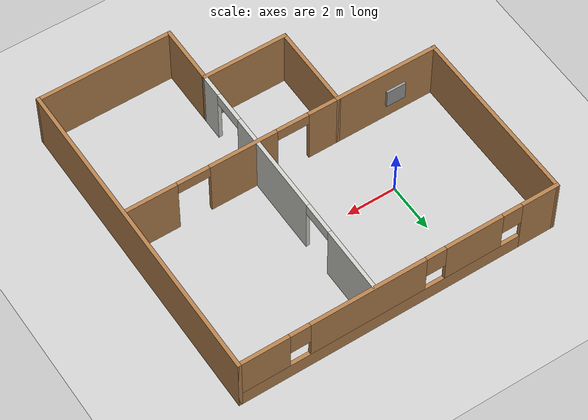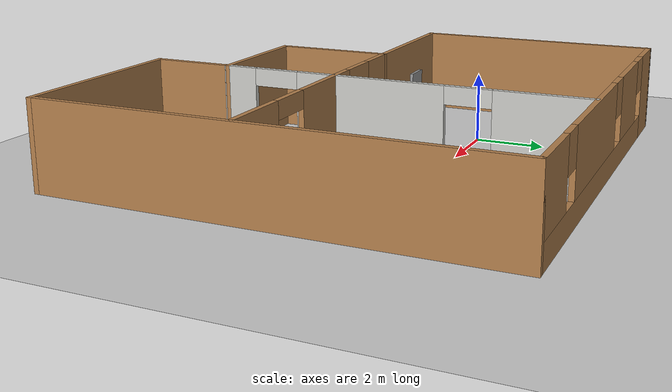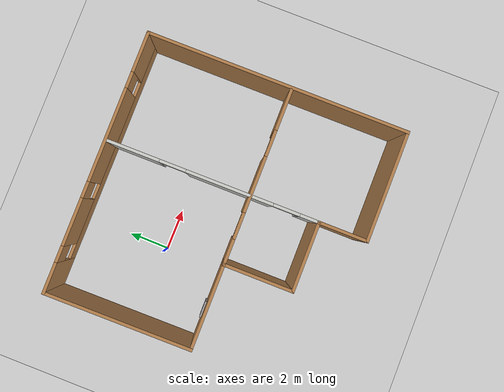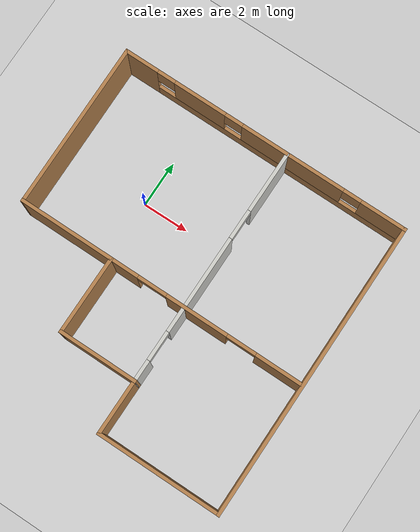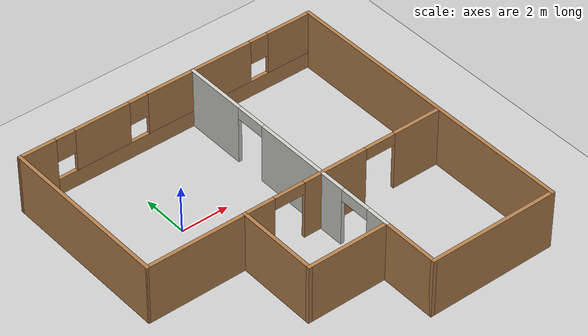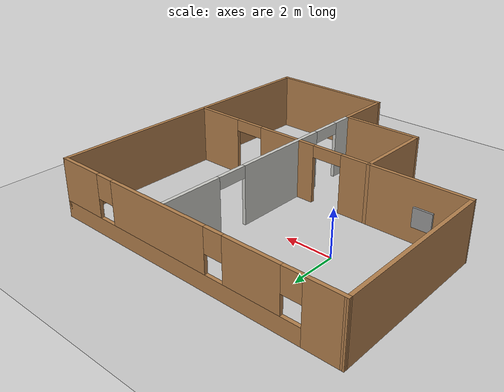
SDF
<sdf version="1.6">
 <world name="default">
  <light name="sun" type="directional">
   <pose>0 0 10 0 -0 0</pose>
   <diffuse>0.8 0.8 0.8 1</diffuse>
   <specular>0.2 0.2 0.2 1</specular>
   <attenuation>
    <range>1000</range>
    <constant>0.9</constant>
    <linear>0.01</linear>
    <quadratic>0.001</quadratic>
   </attenuation>
   <direction>-0.5 0.1 -0.9</direction>
  </light>
  <model name="ground_plane">
   <static>1</static>
   <link name="link">
    <collision name="collision">
     <geometry><plane><normal>0 0 1</normal><size>100 100</size></plane></geometry>
     <surface>
      <contact><collide_bitmask>65535</collide_bitmask></contact>
      <friction><ode><mu>100</mu><mu2>50</mu2></ode></friction>
     </surface>
    </collision>
    <visual name="visual">
     <cast_shadows>0</cast_shadows>
     <geometry><plane><normal>0 0 1</normal><size>100 100</size></plane></geometry>
     <material>
      <script><uri>file://media/materials/scripts/gazebo.material</uri><name>Gazebo/Grey</name></script>
     </material>
    </visual>
   </link>
  </model>
  <gravity>0 0 -9.8</gravity>
  <magnetic_field>6e-06 2.3e-05 -4.2e-05</magnetic_field>
  <atmosphere type="adiabatic"/>
  <physics name="default_physics" default="0" type="ode">
   <max_step_size>0.001</max_step_size>
   <real_time_factor>1</real_time_factor>
   <real_time_update_rate>1000</real_time_update_rate>
  </physics>
  <scene><ambient>0.4 0.4 0.4 1</ambient><background>0.7 0.7 0.7 1</background><shadows>1</shadows></scene>
  <audio><device>default</device></audio>
  <spherical_coordinates>
   <surface_model>EARTH_WGS84</surface_model>
   <latitude_deg>0</latitude_deg>
   <longitude_deg>0</longitude_deg>
   <elevation>0</elevation>
   <heading_deg>0</heading_deg>
  </spherical_coordinates>
  <model name="robot_house">
   <pose>2.79981 -2.1318 0 0 -0 0</pose>
   <link name="Wall_0">
    <pose>0.000261 6.42474 0 0 -0 0</pose>
    <visual name="Wall_0_Visual_0">
     <pose>-5.723 0 1.25 0 -0 0</pose>
     <geometry><box><size>1.55399 0.15 2.5</size></box></geometry>
     <material>
      <script><uri>file://media/materials/scripts/gazebo.material</uri><name>Gazebo/Wood</name></script>
      <ambient>1 1 1 1</ambient>
     </material>
     <meta><layer>0</layer></meta>
    </visual>
    <collision name="Wall_0_Collision_0">
     <geometry><box><size>1.55399 0.15 2.5</size></box></geometry>
     <pose>-5.723 0 1.25 0 -0 0</pose>
    </collision>
    <visual name="Wall_0_Visual_1">
     <pose>0.776997 0 0.35 0 -0 0</pose>
     <geometry><box><size>11.446 0.15 0.7</size></box></geometry>
     <material>
      <script><uri>file://media/materials/scripts/gazebo.material</uri><name>Gazebo/Wood</name></script>
      <ambient>1 1 1 1</ambient>
     </material>
     <meta><layer>0</layer></meta>
    </visual>
    <collision name="Wall_0_Collision_1">
     <geometry><box><size>11.446 0.15 0.7</size></box></geometry>
     <pose>0.776997 0 0.35 0 -0 0</pose>
    </collision>
    <visual name="Wall_0_Visual_2">
     <pose>-2.97061 0 1.6 0 -0 0</pose>
     <geometry><box><size>2.35079 0.15 1.8</size></box></geometry>
     <material>
      <script><uri>file://media/materials/scripts/gazebo.material</uri><name>Gazebo/Wood</name></script>
      <ambient>1 1 1 1</ambient>
     </material>
     <meta><layer>0</layer></meta>
    </visual>
    <collision name="Wall_0_Collision_2">
     <geometry><box><size>2.35079 0.15 1.8</size></box></geometry>
     <pose>-2.97061 0 1.6 0 -0 0</pose>
    </collision>
    <visual name="Wall_0_Visual_3">
     <pose>1.32732 0 1.6 0 -0 0</pose>
     <geometry><box><size>4.64506 0.15 1.8</size></box></geometry>
     <material>
      <script><uri>file://media/materials/scripts/gazebo.material</uri><name>Gazebo/Wood</name></script>
      <ambient>1 1 1 1</ambient>
     </material>
     <meta><layer>0</layer></meta>
    </visual>
    <collision name="Wall_0_Collision_3">
     <geometry><box><size>4.64506 0.15 1.8</size></box></geometry>
     <pose>1.32732 0 1.6 0 -0 0</pose>
    </collision>
    <visual name="Wall_0_Visual_4">
     <pose>5.47492 0 1.6 0 -0 0</pose>
     <geometry><box><size>2.05015 0.15 1.8</size></box></geometry>
     <material>
      <script><uri>file://media/materials/scripts/gazebo.material</uri><name>Gazebo/Wood</name></script>
      <ambient>1 1 1 1</ambient>
     </material>
     <meta><layer>0</layer></meta>
    </visual>
    <collision name="Wall_0_Collision_4">
     <geometry><box><size>2.05015 0.15 1.8</size></box></geometry>
     <pose>5.47492 0 1.6 0 -0 0</pose>
    </collision>
    <visual name="Wall_0_Visual_5">
     <pose>-4.54601 0 2 0 -0 0</pose>
     <geometry><box><size>0.8 0.15 1</size></box></geometry>
     <material>
      <script><uri>file://media/materials/scripts/gazebo.material</uri><name>Gazebo/Wood</name></script>
      <ambient>1 1 1 1</ambient>
     </material>
     <meta><layer>0</layer></meta>
    </visual>
    <collision name="Wall_0_Collision_5">
     <geometry><box><size>0.8 0.15 1</size></box></geometry>
     <pose>-4.54601 0 2 0 -0 0</pose>
    </collision>
    <visual name="Wall_0_Visual_6">
     <pose>-1.39521 0 2 0 -0 0</pose>
     <geometry><box><size>0.8 0.15 1</size></box></geometry>
     <material>
      <script><uri>file://media/materials/scripts/gazebo.material</uri><name>Gazebo/Wood</name></script>
      <ambient>1 1 1 1</ambient>
     </material>
     <meta><layer>0</layer></meta>
    </visual>
    <collision name="Wall_0_Collision_6">
     <geometry><box><size>0.8 0.15 1</size></box></geometry>
     <pose>-1.39521 0 2 0 -0 0</pose>
    </collision>
    <visual name="Wall_0_Visual_7">
     <pose>4.04985 0 2 0 -0 0</pose>
     <geometry><box><size>0.8 0.15 1</size></box></geometry>
     <material>
      <script><uri>file://media/materials/scripts/gazebo.material</uri><name>Gazebo/Wood</name></script>
      <ambient>1 1 1 1</ambient>
     </material>
     <meta><layer>0</layer></meta>
    </visual>
    <collision name="Wall_0_Collision_7">
     <geometry><box><size>0.8 0.15 1</size></box></geometry>
     <pose>4.04985 0 2 0 -0 0</pose>
    </collision>
   </link>
   <link name="Wall_1">
    <collision name="Wall_1_Collision">
     <geometry><box><size>13 0.15 2.5</size></box></geometry>
     <pose>0 0 1.25 0 -0 0</pose>
    </collision>
    <visual name="Wall_1_Visual">
     <pose>0 0 1.25 0 -0 0</pose>
     <geometry><box><size>13 0.15 2.5</size></box></geometry>
     <material>
      <script><uri>file://media/materials/scripts/gazebo.material</uri><name>Gazebo/Wood</name></script>
      <ambient>1 1 1 1</ambient>
     </material>
     <meta><layer>0</layer></meta>
    </visual>
    <pose>6.42526 -0.000261 0 0 -0 -1.5708</pose>
   </link>
   <link name="Wall_11">
    <pose>2.02526 -0.725261 0 0 -0 0</pose>
    <visual name="Wall_11_Visual_0">
     <pose>-3.71909 0 1.25 0 -0 0</pose>
     <geometry><box><size>1.31182 0.15 2.5</size></box></geometry>
     <material>
      <script><uri>file://media/materials/scripts/gazebo.material</uri><name>Gazebo/Wood</name></script>
      <ambient>1 1 1 1</ambient>
     </material>
     <meta><layer>0</layer></meta>
    </visual>
    <collision name="Wall_11_Collision_0">
     <geometry><box><size>1.31182 0.15 2.5</size></box></geometry>
     <pose>-3.71909 0 1.25 0 -0 0</pose>
    </collision>
    <visual name="Wall_11_Visual_1">
     <pose>-0.385539 0 1.25 0 -0 0</pose>
     <geometry><box><size>2.75528 0.15 2.5</size></box></geometry>
     <material>
      <script><uri>file://media/materials/scripts/gazebo.material</uri><name>Gazebo/Wood</name></script>
      <ambient>1 1 1 1</ambient>
     </material>
     <meta><layer>0</layer></meta>
    </visual>
    <collision name="Wall_11_Collision_1">
     <geometry><box><size>2.75528 0.15 2.5</size></box></geometry>
     <pose>-0.385539 0 1.25 0 -0 0</pose>
    </collision>
    <visual name="Wall_11_Visual_2">
     <pose>3.33355 0 1.25 0 -0 0</pose>
     <geometry><box><size>2.0829 0.15 2.5</size></box></geometry>
     <material>
      <script><uri>file://media/materials/scripts/gazebo.material</uri><name>Gazebo/Wood</name></script>
      <ambient>1 1 1 1</ambient>
     </material>
     <meta><layer>0</layer></meta>
    </visual>
    <collision name="Wall_11_Collision_2">
     <geometry><box><size>2.0829 0.15 2.5</size></box></geometry>
     <pose>3.33355 0 1.25 0 -0 0</pose>
    </collision>
    <visual name="Wall_11_Visual_3">
     <pose>-2.41318 0 2.25 0 -0 0</pose>
     <geometry><box><size>1.3 0.15 0.5</size></box></geometry>
     <material>
      <script><uri>file://media/materials/scripts/gazebo.material</uri><name>Gazebo/Wood</name></script>
      <ambient>1 1 1 1</ambient>
     </material>
     <meta><layer>0</layer></meta>
    </visual>
    <collision name="Wall_11_Collision_3">
     <geometry><box><size>1.3 0.15 0.5</size></box></geometry>
     <pose>-2.41318 0 2.25 0 -0 0</pose>
    </collision>
    <visual name="Wall_11_Visual_4">
     <pose>1.6421 0 2.25 0 -0 0</pose>
     <geometry><box><size>1.3 0.15 0.5</size></box></geometry>
     <material>
      <script><uri>file://media/materials/scripts/gazebo.material</uri><name>Gazebo/Wood</name></script>
      <ambient>1 1 1 1</ambient>
     </material>
     <meta><layer>0</layer></meta>
    </visual>
    <collision name="Wall_11_Collision_4">
     <geometry><box><size>1.3 0.15 0.5</size></box></geometry>
     <pose>1.6421 0 2.25 0 -0 0</pose>
    </collision>
   </link>
   <link name="Wall_2">
    <collision name="Wall_2_Collision">
     <geometry><box><size>5.5 0.15 2.5</size></box></geometry>
     <pose>0 0 1.25 0 -0 0</pose>
    </collision>
    <visual name="Wall_2_Visual">
     <pose>0 0 1.25 0 -0 0</pose>
     <geometry><box><size>5.5 0.15 2.5</size></box></geometry>
     <material>
      <script><uri>file://media/materials/scripts/gazebo.material</uri><name>Gazebo/Wood</name></script>
      <ambient>1 1 1 1</ambient>
     </material>
     <meta><layer>0</layer></meta>
    </visual>
    <pose>3.75026 -6.42526 0 0 -0 3.14159</pose>
   </link>
   <link name="Wall_3">
    <collision name="Wall_3_Collision">
     <geometry><box><size>2.5 0.15 2.5</size></box></geometry>
     <pose>0 0 1.25 0 -0 0</pose>
    </collision>
    <visual name="Wall_3_Visual">
     <pose>0 0 1.25 0 -0 0</pose>
     <geometry><box><size>2.5 0.15 2.5</size></box></geometry>
     <material>
      <script><uri>file://media/materials/scripts/gazebo.material</uri><name>Gazebo/Wood</name></script>
      <ambient>1 1 1 1</ambient>
     </material>
     <meta><layer>0</layer></meta>
    </visual>
    <pose>1.07526 -5.25026 0 0 -0 1.5708</pose>
   </link>
   <link name="Wall_4">
    <collision name="Wall_4_Collision">
     <geometry><box><size>3.5 0.15 2.5</size></box></geometry>
     <pose>0 0 1.25 0 -0 0</pose>
    </collision>
    <visual name="Wall_4_Visual">
     <pose>0 0 1.25 0 -0 0</pose>
     <geometry><box><size>3.5 0.15 2.5</size></box></geometry>
     <material>
      <script><uri>file://media/materials/scripts/gazebo.material</uri><name>Gazebo/Wood</name></script>
      <ambient>0.921569 0.807843 0.615686 1</ambient>
     </material>
     <meta><layer>0</layer></meta>
    </visual>
    <pose>-0.599739 -4.07526 0 0 -0 3.14159</pose>
   </link>
   <link name="Wall_5">
    <collision name="Wall_5_Collision">
     <geometry><box><size>3.5 0.15 2.5</size></box></geometry>
     <pose>0 0 1.25 0 -0 0</pose>
    </collision>
    <visual name="Wall_5_Visual">
     <pose>0 0 1.25 0 -0 0</pose>
     <geometry><box><size>3.5 0.15 2.5</size></box></geometry>
     <material>
      <script><uri>file://media/materials/scripts/gazebo.material</uri><name>Gazebo/Wood</name></script>
      <ambient>0.921569 0.807843 0.615686 1</ambient>
     </material>
     <meta><layer>0</layer></meta>
    </visual>
    <pose>-2.27474 -2.40026 0 0 -0 1.5708</pose>
   </link>
   <link name="Wall_6">
    <collision name="Wall_6_Collision">
     <geometry><box><size>4.25 0.15 2.5</size></box></geometry>
     <pose>0 0 1.25 0 -0 0</pose>
    </collision>
    <visual name="Wall_6_Visual">
     <pose>0 0 1.25 0 -0 0</pose>
     <geometry><box><size>4.25 0.15 2.5</size></box></geometry>
     <material>
      <script><uri>file://media/materials/scripts/gazebo.material</uri><name>Gazebo/Wood</name></script>
      <ambient>1 1 1 1</ambient>
     </material>
     <meta><layer>0</layer></meta>
    </visual>
    <pose>-4.32474 -0.725261 0 0 -0 3.14159</pose>
   </link>
   <link name="Wall_7">
    <collision name="Wall_7_Collision">
     <geometry><box><size>7.30018 0.15 2.5</size></box></geometry>
     <pose>0 0 1.25 0 -0 0</pose>
    </collision>
    <visual name="Wall_7_Visual">
     <pose>0 0 1.25 0 -0 0</pose>
     <geometry><box><size>7.30018 0.15 2.5</size></box></geometry>
     <material>
      <script><uri>file://media/materials/scripts/gazebo.material</uri><name>Gazebo/Wood</name></script>
      <ambient>1 1 1 1</ambient>
     </material>
     <meta><layer>0</layer></meta>
    </visual>
    <pose>-6.39974 2.84974 0 0 -0 1.57779</pose>
   </link>
   <link name="Wall_9">
    <pose>1.0718 1.15715 0 0 -0 -1.57014</pose>
    <visual name="Wall_9_Visual_0">
     <pose>-3.95035 0 1.25 0 -0 0</pose>
     <geometry><box><size>2.71413 0.15 2.5</size></box></geometry>
     <material>
      <script><uri>file://media/materials/scripts/gazebo.material</uri><name>Gazebo/CeilingTiled</name></script>
      <ambient>0.560784 0.34902 0.00784314 1</ambient>
     </material>
     <meta><layer>0</layer></meta>
    </visual>
    <collision name="Wall_9_Collision_0">
     <geometry><box><size>2.71413 0.15 2.5</size></box></geometry>
     <pose>-3.95035 0 1.25 0 -0 0</pose>
    </collision>
    <visual name="Wall_9_Visual_1">
     <pose>0.855744 0 1.25 0 -0 0</pose>
     <geometry><box><size>4.29805 0.15 2.5</size></box></geometry>
     <material>
      <script><uri>file://media/materials/scripts/gazebo.material</uri><name>Gazebo/CeilingTiled</name></script>
      <ambient>0.560784 0.34902 0.00784314 1</ambient>
     </material>
     <meta><layer>0</layer></meta>
    </visual>
    <collision name="Wall_9_Collision_1">
     <geometry><box><size>4.29805 0.15 2.5</size></box></geometry>
     <pose>0.855744 0 1.25 0 -0 0</pose>
    </collision>
    <visual name="Wall_9_Visual_2">
     <pose>4.80609 0 1.25 0 -0 0</pose>
     <geometry><box><size>1.00264 0.15 2.5</size></box></geometry>
     <material>
      <script><uri>file://media/materials/scripts/gazebo.material</uri><name>Gazebo/CeilingTiled</name></script>
      <ambient>0.560784 0.34902 0.00784314 1</ambient>
     </material>
     <meta><layer>0</layer></meta>
    </visual>
    <collision name="Wall_9_Collision_2">
     <geometry><box><size>1.00264 0.15 2.5</size></box></geometry>
     <pose>4.80609 0 1.25 0 -0 0</pose>
    </collision>
    <visual name="Wall_9_Visual_3">
     <pose>-1.94328 0 2.25 0 -0 0</pose>
     <geometry><box><size>1.3 0.15 0.5</size></box></geometry>
     <material>
      <script><uri>file://media/materials/scripts/gazebo.material</uri><name>Gazebo/CeilingTiled</name></script>
      <ambient>0.560784 0.34902 0.00784314 1</ambient>
     </material>
     <meta><layer>0</layer></meta>
    </visual>
    <collision name="Wall_9_Collision_3">
     <geometry><box><size>1.3 0.15 0.5</size></box></geometry>
     <pose>-1.94328 0 2.25 0 -0 0</pose>
    </collision>
    <visual name="Wall_9_Visual_4">
     <pose>3.65477 0 2.25 0 -0 0</pose>
     <geometry><box><size>1.3 0.15 0.5</size></box></geometry>
     <material>
      <script><uri>file://media/materials/scripts/gazebo.material</uri><name>Gazebo/CeilingTiled</name></script>
      <ambient>0.560784 0.34902 0.00784314 1</ambient>
     </material>
     <meta><layer>0</layer></meta>
    </visual>
    <collision name="Wall_9_Collision_4">
     <geometry><box><size>1.3 0.15 0.5</size></box></geometry>
     <pose>3.65477 0 2.25 0 -0 0</pose>
    </collision>
   </link>
   <link name="Window_4">
    <collision name="Window_4_Collision">
     <geometry><box><size>0.8 0.17 0.8</size></box></geometry>
     <pose>0 0 0.4 0 -0 0</pose>
    </collision>
    <visual name="Window_4_Visual">
     <pose>0 0 0.4 0 -0 0</pose>
     <geometry><box><size>0.8 0.17 0.8</size></box></geometry>
     <material>
      <script><uri>file://media/materials/scripts/gazebo.material</uri><name>Gazebo/Grey</name></script>
     </material>
    </visual>
    <pose>-4.6987 -0.645939 0.7 0 -0 0</pose>
   </link>
   <static>1</static>
  </model>
 </world>
</sdf>
